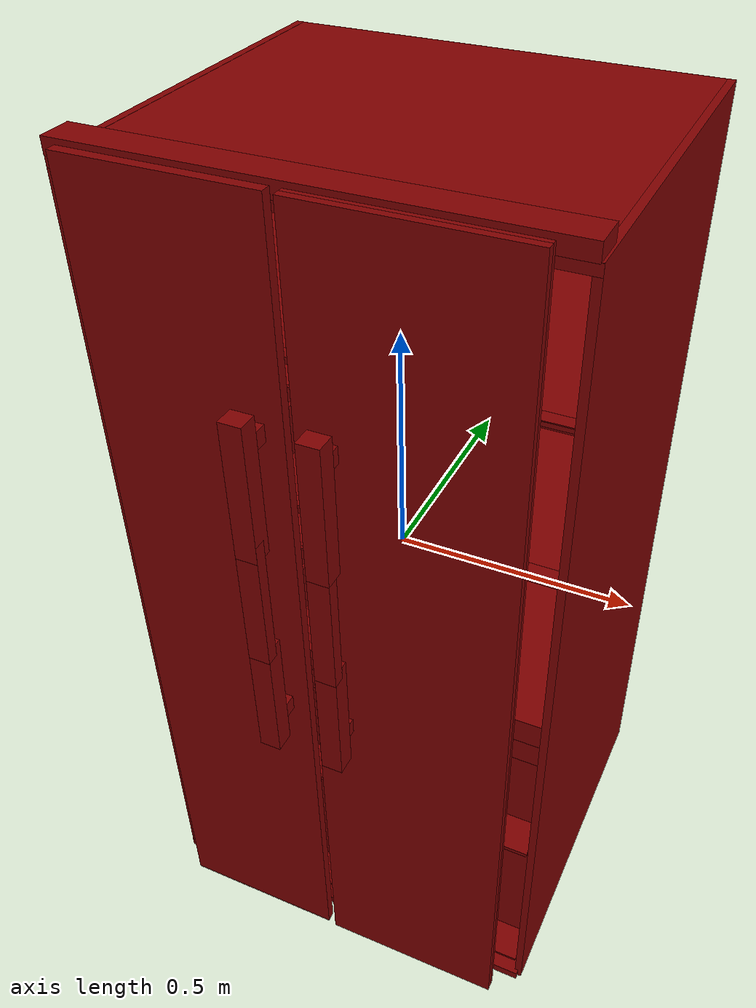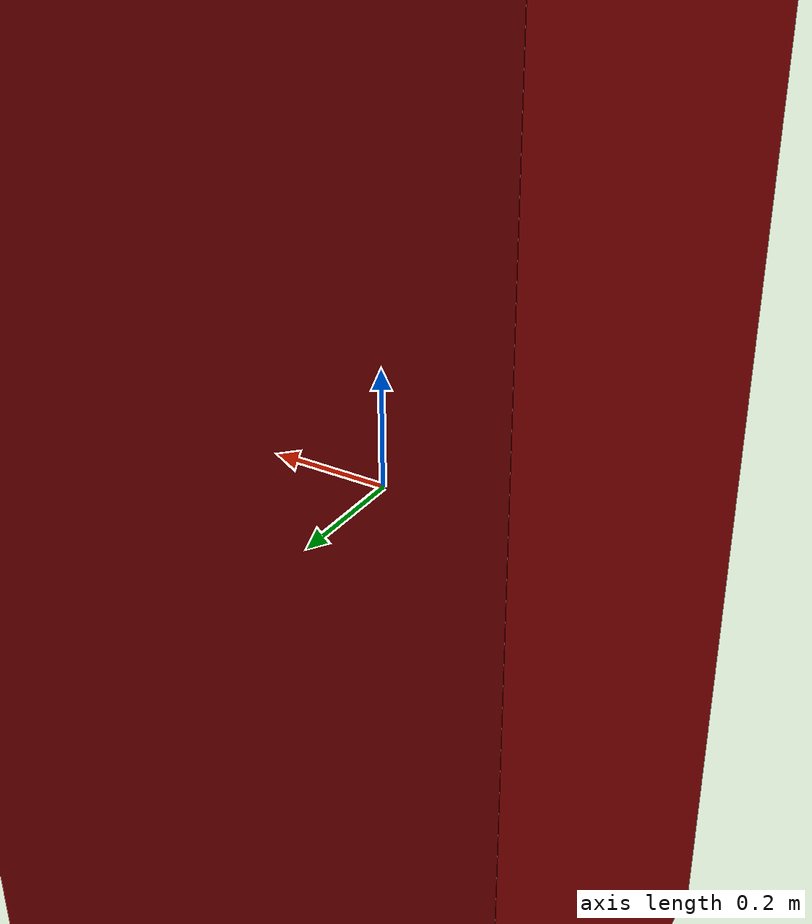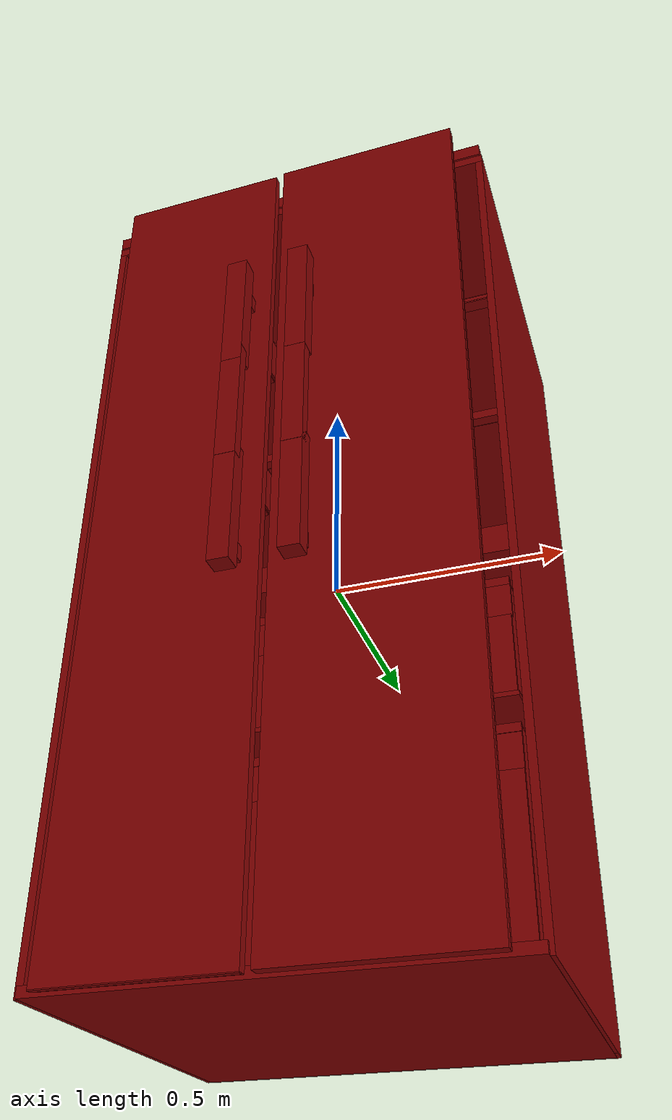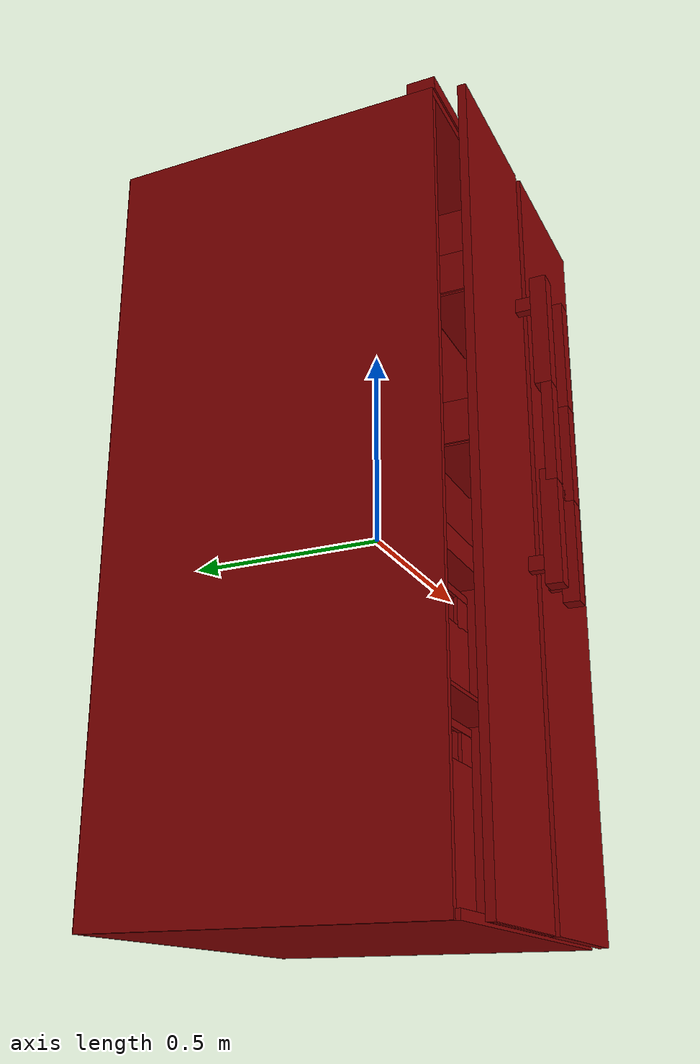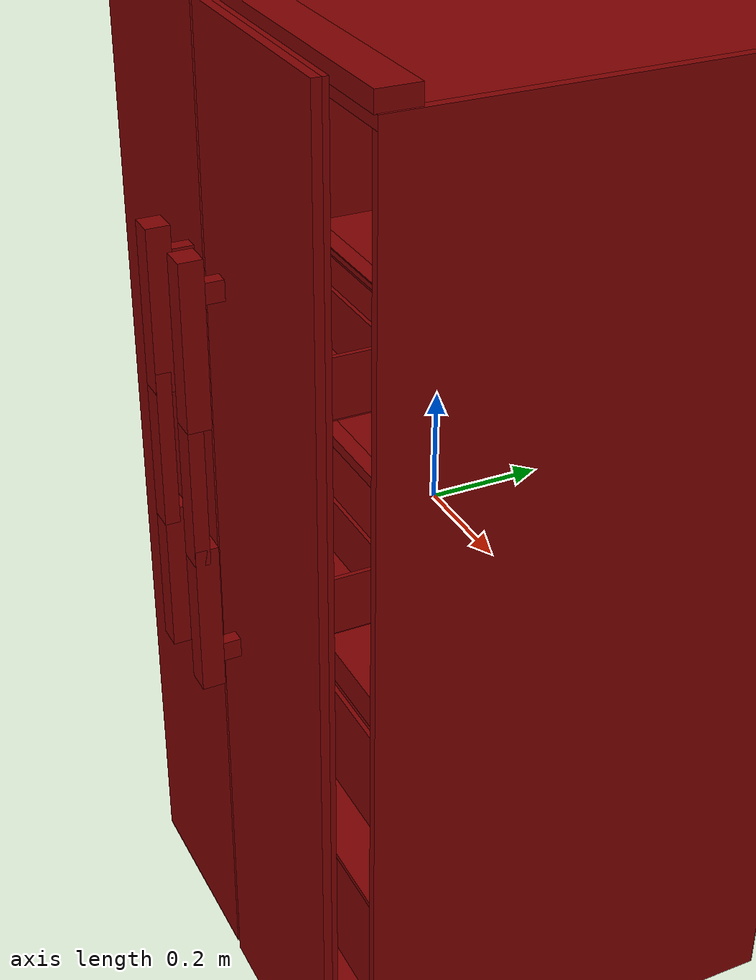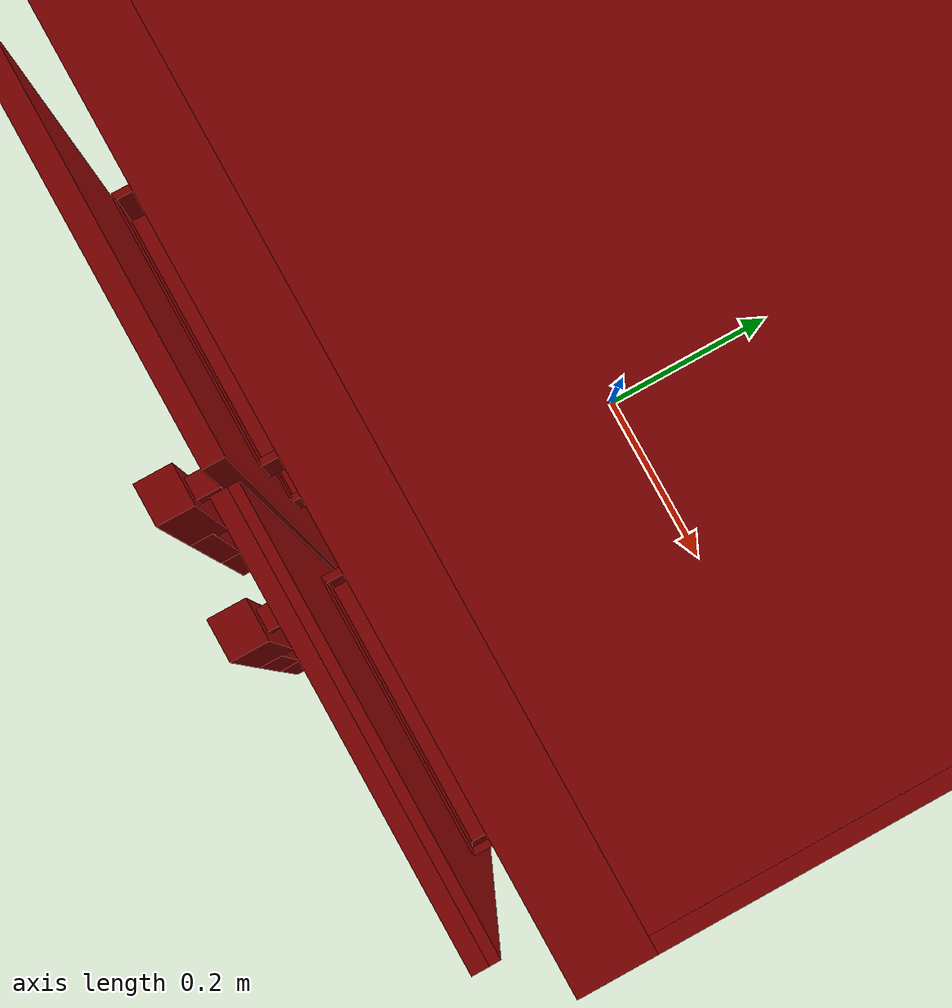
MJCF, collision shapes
<?xml version='1.0' encoding='UTF-8'?>
<mujoco model="model">
  <option timestep="0.002" gravity="0.0 0.0 -9.81"/>
  <compiler angle="radian"/>
  <asset>
    <mesh file="visuals/freezer_door.obj" name="freezer_door_vis"/>
    <mesh file="visuals/freezer_door_Clear.obj" name="freezer_door_Clear_vis"/>
    <mesh file="visuals/freezer_drawer0.obj" name="freezer_drawer0_vis"/>
    <mesh file="visuals/freezer_drawer1.obj" name="freezer_drawer1_vis"/>
    <mesh file="visuals/fridge_door.obj" name="fridge_door_vis"/>
    <mesh file="visuals/fridge_door_Clear.obj" name="fridge_door_Clear_vis"/>
    <mesh file="visuals/fridge_drawer0.obj" name="fridge_drawer0_vis"/>
    <mesh file="visuals/fridge_drawer1.obj" name="fridge_drawer1_vis"/>
    <mesh file="visuals/Body001.obj" name="Body001_vis"/>
    <mesh file="visuals/Body001_Clear.obj" name="Body001_Clear_vis"/>
    <mesh file="visuals/Body002.obj" name="Body002_vis"/>
    <texture file="visuals/T_BC001.png" name="Body001_material" type="2d"/>
    <material name="Body001_material" rgba="1 1 1 1.0" texture="Body001_material" shininess="0.2711968421936035" specular="0.5"/>
    <texture file="visuals/T_BC001.png" name="freezer_door_material" type="2d"/>
    <material name="freezer_door_material" rgba="1 1 1 1.0" texture="freezer_door_material" shininess="0.2711968421936035" specular="0.8"/>
    <texture file="visuals/T_BC001.png" name="freezer_door_Clear_material" type="2d"/>
    <material name="freezer_door_Clear_material" rgba="1 1 1 0.699999988079071" texture="freezer_door_Clear_material" shininess="0.5" specular="0.3103448502657381"/>
    <texture file="visuals/T_BC001.png" name="freezer_drawer0_material" type="2d"/>
    <material name="freezer_drawer0_material" rgba="1 1 1 1.0" texture="freezer_drawer0_material" shininess="0.2711968421936035" specular="0.5"/>
    <texture file="visuals/T_BC001.png" name="freezer_drawer1_material" type="2d"/>
    <material name="freezer_drawer1_material" rgba="1 1 1 1.0" texture="freezer_drawer1_material" shininess="0.2711968421936035" specular="0.5"/>
    <texture file="visuals/T_BC001.png" name="fridge_door_material" type="2d"/>
    <material name="fridge_door_material" rgba="1 1 1 1.0" texture="fridge_door_material" shininess="0.2711968421936035" specular="0.8"/>
    <texture file="visuals/T_BC001.png" name="fridge_door_Clear_material" type="2d"/>
    <material name="fridge_door_Clear_material" rgba="1 1 1 0.699999988079071" texture="fridge_door_Clear_material" shininess="0.5" specular="0.3103448502657381"/>
    <texture file="visuals/T_BC001.png" name="fridge_drawer0_material" type="2d"/>
    <material name="fridge_drawer0_material" rgba="1 1 1 0.699999988079071" texture="fridge_drawer0_material" shininess="0.5" specular="0.3103448502657381"/>
    <texture file="visuals/T_BC001.png" name="fridge_drawer1_material" type="2d"/>
    <material name="fridge_drawer1_material" rgba="1 1 1 0.699999988079071" texture="fridge_drawer1_material" shininess="0.5" specular="0.3103448502657381"/>
    <texture file="visuals/T_BC001.png" name="Body001_Clear_material" type="2d"/>
    <material name="Body001_Clear_material" rgba="1 1 1 0.699999988079071" texture="Body001_Clear_material" shininess="0.5" specular="0.3103448502657381"/>
    <texture file="visuals/T_BC001.png" name="Body002_material" type="2d"/>
    <material name="Body002_material" rgba="1 1 1 1.0" texture="Body002_material" shininess="0.2711968421936035" specular="0.5"/>
  </asset>
  <default>
    <default class="visual">
      <geom conaffinity="0" contype="0" group="1" type="mesh"/>
    </default>
    <default class="collision">
      <geom group="0" rgba="0.5 0 0 0.5"/>
    </default>
    <default class="spawn">
      <geom group="0" rgba="1 1 1 0.5" contype="0" conaffinity="0"/>
      <site group="0" rgba="1 1 1 0.5"/>
    </default>
    <default class="region">
      <geom group="1" conaffinity="0" contype="0" rgba="0 1 0 0"/>
    </default>
  </default>
  <worldbody>
    <body>
      <body name="object">
        <geom mesh="Body001_vis" type="mesh" solimp="0.998 0.998 0.001" solref="0.001 1" friction="0.95 0.3 0.1" class="visual" material="Body001_material"/>
        <geom class="collision" type="box" pos="0.44621882 0.06596079 -0.01984241" size="0.007767058443278074 0.4027557075023651 0.9029160737991333" quat="1.0 0.0 0.0 0.0"/>
        <geom class="collision" type="box" pos="-0.44518340 0.06625146 -0.01984260" size="0.007767022587358952 0.40304771065711975 0.902918815612793" quat="1.0 0.0 0.0 0.0"/>
        <geom class="collision" type="box" pos="0.00051770 0.06625141 0.87209511" size="0.45337268710136414 0.4030490219593048 0.010521224699914455" quat="1.0 0.0 0.0 0.0"/>
        <geom class="collision" type="box" pos="0.00051770 0.44306165 -0.02016941" size="0.45337384939193726 0.027360951527953148 0.902596116065979" quat="1.0 0.0 0.0 0.0"/>
        <geom class="collision" type="box" pos="-0.00001725 -0.30677203 0.89824516" size="0.4498790204524994 0.03391383960843086 0.015936633571982384" quat="1.0 0.0 0.0 0.0"/>
        <geom class="collision" type="box" pos="-0.23103455 0.10162059 0.54390491" size="0.20633357763290405 0.31218308210372925 0.004442761652171612" quat="1.0 0.0 0.0 0.0"/>
        <geom class="collision" type="box" pos="-0.23103461 0.10135735 0.20816555" size="0.206334188580513 0.3124469518661499 0.004442854784429073" quat="1.0 0.0 0.0 0.0"/>
        <geom class="collision" type="box" pos="0.00051768 0.06407682 -0.13568486" size="0.43784162402153015 0.34972813725471497 0.02915366180241108" quat="1.0 0.0 0.0 0.0"/>
        <geom class="collision" type="box" pos="-0.01787329 0.05275404 -0.02146750" size="0.006779637187719345 0.3610515594482422 0.8833908438682556" quat="1.0 0.0 0.0 0.0"/>
        <geom class="collision" type="box" pos="-0.00101628 0.04752206 -0.47721561" size="0.43238478899002075 0.36628425121307373 0.004442933946847916" quat="1.0 0.0 0.0 0.0"/>
        <geom class="collision" type="box" pos="-0.00101628 0.04837650 -0.90973359" size="0.4323861300945282 0.36543047428131104 0.01322093978524208" quat="1.0 0.0 0.0 0.0"/>
        <geom class="collision" type="box" pos="0.00104947 0.05714198 -0.91243505" size="0.4447697699069977 0.4043148458003998 0.010520728304982185" quat="1.0 0.0 0.0 0.0"/>
        <geom class="collision" type="box" pos="0.21367955 0.10135735 0.20816556" size="0.22476822137832642 0.3124905824661255 0.0044435434974730015" quat="1.0 0.0 0.0 0.0"/>
        <geom class="collision" type="box" pos="0.21367917 0.08884196 0.54390479" size="0.22476917505264282 0.32500654458999634 0.004443551879376173" quat="1.0 0.0 0.0 0.0"/>
        <geom class="collision" type="box" pos="-0.00077565 -0.22220803 0.54314131" size="0.44771742820739746 0.013787840493023396 0.007051393855363131" quat="1.0 0.0 0.0 0.0"/>
        <geom class="collision" type="box" pos="-0.00077563 -0.21961197 0.21440809" size="0.44771862030029297 0.013787882402539253 0.00937127135694027" quat="1.0 0.0 0.0 0.0"/>
        <body name="freezer_door">
          <joint axis="0.0 0.0 -1.0" pos="-0.43269765 -0.37996260 -0.00061982" limited="true" name="freezer_door_joint" range="0.0 1.5707963267948966" type="hinge" damping="1" frictionloss="1" armature=".01" stiffness="0.05"/>
          <geom mesh="freezer_door_vis" type="mesh" solimp="0.998 0.998 0.001" solref="0.001 1" friction="0.95 0.3 0.1" class="visual" material="freezer_door_material"/>
          <geom class="collision" type="box" pos="-0.20762806 -0.38984135 -0.00247922" size="0.18522216379642487 0.005338294431567192 0.9224058985710144" quat="1.0 0.0 0.0 0.0" name="freezer_door_main"/>
          <geom class="collision" type="box" pos="-0.20351033 -0.31346169 0.41063071" size="0.1404435932636261 0.0560014583170414 0.00282840128056705" quat="1.0 0.0 0.0 0.0"/>
          <geom class="collision" type="box" pos="-0.20351057 -0.36833149 0.09567123" size="0.14044491946697235 0.0011944229481741786 0.048301827162504196" quat="1.0 0.0 0.0 0.0"/>
          <geom class="collision" type="box" pos="-0.20351031 -0.25788251 0.09567117" size="0.1403992921113968 0.003357943380251527 0.04828261211514473" quat="1.0 0.0 0.0 0.0"/>
          <geom class="collision" type="box" pos="-0.20351057 -0.31346172 0.04587566" size="0.1404440551996231 0.05600184574723244 0.0028283975552767515" quat="1.0 0.0 0.0 0.0"/>
          <geom class="collision" type="box" pos="-0.34577599 -0.31307549 0.46042598" size="0.003705924842506647 0.05580850690603256 0.04828759282827377" quat="1.0 0.0 0.0 0.0"/>
          <geom class="collision" type="box" pos="-0.06324112 -0.31276459 0.46042598" size="0.003761481959372759 0.055808428674936295 0.04828760772943497" quat="1.0 0.0 0.0 0.0"/>
          <geom class="collision" type="box" pos="-0.20351033 -0.36833149 0.46042604" size="0.14044278860092163 0.001194413285702467 0.04830167815089226" quat="1.0 0.0 0.0 0.0"/>
          <geom class="collision" type="box" pos="-0.20351055 -0.25788251 0.46042598" size="0.14039553701877594 0.003357918467372656 0.0482826866209507" quat="1.0 0.0 0.0 0.0"/>
          <geom class="collision" type="box" pos="-0.06324112 -0.31276459 0.09567123" size="0.0037614996545016766 0.05580882355570793 0.04828827828168869" quat="1.0 0.0 0.0 0.0"/>
          <geom class="collision" type="box" pos="-0.34540424 -0.31307549 0.09567123" size="0.0033341876696795225 0.0558089017868042 0.04828813672065735" quat="1.0 0.0 0.0 0.0"/>
          <geom class="collision" type="box" pos="-0.07065108 -0.41492808 0.50640101" size="0.011834409087896347 0.025321457535028458 0.017358077690005302" quat="1.0 0.0 0.0 0.0" name="freezer_door_handle_1"/>
          <geom class="collision" type="box" pos="-0.07128543 -0.45421148 0.42671994" size="0.021905435249209404 0.019859325140714645 0.140484020113945" quat="1.0 0.0 0.0 0.0" name="freezer_door_handle_2"/>
          <geom class="collision" type="box" pos="-0.07128536 -0.45363397 -0.06516128" size="0.02190541848540306 0.019859397783875465 0.13595576584339142" quat="1.0 0.0 0.0 0.0" name="freezer_door_handle_3"/>
          <geom class="collision" type="box" pos="-0.07065097 -0.41491366 -0.14551889" size="0.011834399774670601 0.025335820391774178 0.01735810749232769" quat="1.0 0.0 0.0 0.0" name="freezer_door_handle_4"/>
          <geom class="collision" type="box" pos="-0.07128536 -0.46109644 0.18254045" size="0.021905606612563133 0.012859604321420193 0.13969214260578156" quat="1.0 0.0 0.0 0.0" name="freezer_door_handle_main"/>
          <geom class="collision" type="box" pos="-0.20762806 -0.38500908 -0.00134330" size="0.1852668821811676 0.010171208530664444 0.9214487671852112" quat="1.0 0.0 0.0 0.0"/>
          <body name="freezer_door_Clear">
            <geom mesh="freezer_door_Clear_vis" type="mesh" solimp="0.998 0.998 0.001" solref="0.001 1" friction="0.95 0.3 0.1" class="visual" material="freezer_door_Clear_material"/>
            <geom class="collision" type="box" pos="-0.20351033 -0.31346169 0.41063071" size="0.1404435932636261 0.0560014583170414 0.00282840128056705" quat="1.0 0.0 0.0 0.0"/>
            <geom class="collision" type="box" pos="-0.20351057 -0.36833149 0.09567123" size="0.14044491946697235 0.0011944229481741786 0.048301827162504196" quat="1.0 0.0 0.0 0.0"/>
            <geom class="collision" type="box" pos="-0.20351031 -0.25788251 0.09567117" size="0.1403992921113968 0.003357943380251527 0.04828261211514473" quat="1.0 0.0 0.0 0.0"/>
            <geom class="collision" type="box" pos="-0.20351057 -0.31346172 0.04587566" size="0.1404440551996231 0.05600184574723244 0.0028283975552767515" quat="1.0 0.0 0.0 0.0"/>
            <geom class="collision" type="box" pos="-0.34577599 -0.31307549 0.46042598" size="0.003705924842506647 0.05580850690603256 0.04828759282827377" quat="1.0 0.0 0.0 0.0"/>
            <geom class="collision" type="box" pos="-0.06324112 -0.31276459 0.46042598" size="0.003761481959372759 0.055808428674936295 0.04828760772943497" quat="1.0 0.0 0.0 0.0"/>
            <geom class="collision" type="box" pos="-0.20351033 -0.36833149 0.46042604" size="0.14044278860092163 0.001194413285702467 0.04830167815089226" quat="1.0 0.0 0.0 0.0"/>
            <geom class="collision" type="box" pos="-0.20351055 -0.25788251 0.46042598" size="0.14039553701877594 0.003357918467372656 0.0482826866209507" quat="1.0 0.0 0.0 0.0"/>
            <geom class="collision" type="box" pos="-0.06324112 -0.31276459 0.09567123" size="0.0037614996545016766 0.05580882355570793 0.04828827828168869" quat="1.0 0.0 0.0 0.0"/>
            <geom class="collision" type="box" pos="-0.34540424 -0.31307549 0.09567123" size="0.0033341876696795225 0.0558089017868042 0.04828813672065735" quat="1.0 0.0 0.0 0.0"/>
          </body>
        </body>
        <body name="freezer_drawer0">
          <geom class="region" name="reg_freezer_drawer0" type="box" pos="-0.22675699 0.08631127999999999 -0.687520465" size="0.15583861999999998 0.30335341 0.18469701500000002"/>
          <joint axis="0.0 -1.0 0.0" pos="-0.22689013 0.08366627 -0.69432806" limited="true" name="freezer_drawer0_joint" range="0.0 0.6" type="slide" damping="1" frictionloss="1" armature=".01" stiffness="0.05"/>
          <geom mesh="freezer_drawer0_vis" type="mesh" solimp="0.998 0.998 0.001" solref="0.001 1" friction="0.95 0.3 0.1" class="visual" material="freezer_drawer0_material"/>
          <geom class="collision" type="box" pos="-0.08512188 -0.23600462 -0.53870326" size="0.030655868351459503 0.004228693433105946 0.04130111634731293" quat="1.0 0.0 0.0 0.0"/>
          <geom class="collision" type="box" pos="-0.36605644 -0.23600459 -0.53870326" size="0.03326001390814781 0.0042287190444767475 0.04130129516124725" quat="1.0 0.0 0.0 0.0"/>
          <geom class="collision" type="box" pos="-0.22689107 -0.23600462 -0.73560684" size="0.17199008166790009 0.004228721838444471 0.15905064344406128" quat="1.0 0.0 0.0 0.0"/>
          <geom class="collision" type="box" pos="-0.22581503 -0.23677871 -0.50309210" size="0.17124305665493011 0.00500210328027606 0.008779858238995075" quat="1.0 0.0 0.0 0.0"/>
          <geom class="collision" type="box" pos="-0.39520264 0.08798204 -0.69336271" size="0.004421781748533249 0.31956592202186584 0.19901259243488312" quat="1.0 0.0 0.0 0.0"/>
          <geom class="collision" type="box" pos="-0.05858661 0.08729343 -0.69336265" size="0.004412725567817688 0.31945785880088806 0.1990128457546234" quat="1.0 0.0 0.0 0.0"/>
          <geom class="collision" type="box" pos="-0.22700426 0.08717792 -0.88918650" size="0.17213794589042664 0.3192666172981262 0.005509703420102596" quat="1.0 0.0 0.0 0.0"/>
          <geom class="collision" type="box" pos="-0.22527456 0.40324929 -0.69439935" size="0.1717817485332489 0.0046240282244980335 0.19797678291797638" quat="1.0 0.0 0.0 0.0"/>
        </body>
        <body name="freezer_drawer1">
          <geom class="region" name="reg_freezer_drawer1" type="box" pos="-0.237879125 0.08228477 -0.328666755" size="0.155313595 0.30427034999999997 0.128537385"/>
          <joint axis="0.0 -1.0 0.0" pos="-0.22791891 0.08366627 -0.33160725" limited="true" name="freezer_drawer1_joint" range="0.0 0.6" type="slide" damping="1" frictionloss="1" armature=".01" stiffness="0.05"/>
          <geom mesh="freezer_drawer1_vis" type="mesh" solimp="0.998 0.998 0.001" solref="0.001 1" friction="0.95 0.3 0.1" class="visual" material="freezer_drawer1_material"/>
          <geom class="collision" type="box" pos="-0.22784060 0.40192556 -0.33300986" size="0.1725112348794937 0.006034227553755045 0.13808131217956543" quat="1.0 0.0 0.0 0.0"/>
          <geom class="collision" type="box" pos="-0.22886309 0.07850865 -0.46761068" size="0.1713675558567047 0.3164621889591217 0.0035022865049540997" quat="1.0 0.0 0.0 0.0"/>
          <geom class="collision" type="box" pos="-0.05941728 0.08161505 -0.33026724" size="0.004610856529325247 0.3138255476951599 0.13741330802440643" quat="1.0 0.0 0.0 0.0"/>
          <geom class="collision" type="box" pos="-0.39634526 0.08141264 -0.33026724" size="0.004535562824457884 0.31362494826316833 0.13741397857666016" quat="1.0 0.0 0.0 0.0"/>
          <geom class="collision" type="box" pos="-0.22746241 -0.23606527 -0.20161288" size="0.17344792187213898 0.004289492964744568 0.008780058473348618" quat="1.0 0.0 0.0 0.0"/>
          <geom class="collision" type="box" pos="-0.22746241 -0.23600462 -0.37307521" size="0.17344792187213898 0.004228844307363033 0.09801774471998215" quat="1.0 0.0 0.0 0.0"/>
          <geom class="collision" type="box" pos="-0.36877957 -0.23600462 -0.23722413" size="0.032130833715200424 0.004228838253766298 0.0413036048412323" quat="1.0 0.0 0.0 0.0"/>
          <geom class="collision" type="box" pos="-0.08749916 -0.23600462 -0.23722413" size="0.032130833715200424 0.004228859208524227 0.041303783655166626" quat="1.0 0.0 0.0 0.0"/>
        </body>
        <body name="fridge_door">
          <joint axis="0.0 0.0 1.0" pos="0.43339086 -0.38305325 0.00048423" limited="true" name="fridge_door_joint" range="0.0 1.5707963267948966" type="hinge" damping="1" frictionloss="1" armature=".01" stiffness="0.05"/>
          <geom mesh="fridge_door_vis" type="mesh" solimp="0.998 0.998 0.001" solref="0.001 1" friction="0.95 0.3 0.1" class="visual" material="fridge_door_material"/>
          <geom class="collision" type="box" pos="0.19746725 -0.38715753 -0.00163477" size="0.19972559809684753 0.012316768988966942 0.921549916267395" quat="1.0 0.0 0.0 0.0"/>
          <geom class="collision" type="box" pos="0.05998394 -0.31307549 0.09567123" size="0.0033341876696795225 0.0558089017868042 0.048288773745298386" quat="1.0 0.0 0.0 0.0"/>
          <geom class="collision" type="box" pos="0.20139934 -0.25788251 0.46085936" size="0.13992030918598175 0.0033580497838556767 0.0482843741774559" quat="1.0 0.0 0.0 0.0"/>
          <geom class="collision" type="box" pos="0.20139957 -0.36833149 0.46085942" size="0.13996103405952454 0.001194413285702467 0.04829975962638855" quat="1.0 0.0 0.0 0.0"/>
          <geom class="collision" type="box" pos="0.34119049 -0.31276459 0.46085936" size="0.003761481959372759 0.055808428674936295 0.048288680613040924" quat="1.0 0.0 0.0 0.0"/>
          <geom class="collision" type="box" pos="0.05961219 -0.31307549 0.46085936" size="0.003705924842506647 0.05580850690603256 0.04828878119587898" quat="1.0 0.0 0.0 0.0"/>
          <geom class="collision" type="box" pos="0.20139933 -0.31346172 0.04587566" size="0.13996106386184692 0.05600184574723244 0.002828234573826194" quat="1.0 0.0 0.0 0.0"/>
          <geom class="collision" type="box" pos="0.20139958 -0.25788251 0.09567117" size="0.13992615044116974 0.003358164569362998 0.048285454511642456" quat="1.0 0.0 0.0 0.0"/>
          <geom class="collision" type="box" pos="0.20139933 -0.36833149 0.09567123" size="0.1399610936641693 0.0011944229481741786 0.048298753798007965" quat="1.0 0.0 0.0 0.0"/>
          <geom class="collision" type="box" pos="0.20139957 -0.31346169 0.41106397" size="0.13995833694934845 0.0560014583170414 0.00282818335108459" quat="1.0 0.0 0.0 0.0"/>
          <geom class="collision" type="box" pos="0.34119049 -0.31276459 0.09567123" size="0.0037614996545016766 0.05580882355570793 0.048289280384778976" quat="1.0 0.0 0.0 0.0"/>
          <geom class="collision" type="box" pos="0.06580608 -0.41492808 0.50640101" size="0.011834312230348587 0.025321267545223236 0.01735807955265045" quat="1.0 0.0 0.0 0.0" name="fridge_door_handle_1"/>
          <geom class="collision" type="box" pos="0.06644043 -0.45421148 0.42671994" size="0.021905288100242615 0.019859489053487778 0.14048537611961365" quat="1.0 0.0 0.0 0.0" name="fridge_door_handle_2"/>
          <geom class="collision" type="box" pos="0.06644036 -0.45363397 -0.06516128" size="0.02190527133643627 0.019859537482261658 0.13595712184906006" quat="1.0 0.0 0.0 0.0" name="fridge_door_handle_3"/>
          <geom class="collision" type="box" pos="0.06580597 -0.41491366 -0.14551889" size="0.011834271252155304 0.025335565209388733 0.01735811121761799" quat="1.0 0.0 0.0 0.0" name="fridge_door_handle_4"/>
          <geom class="collision" type="box" pos="0.06644036 -0.46109644 0.18254045" size="0.021905280649662018 0.012859556823968887 0.1396934986114502" quat="1.0 0.0 0.0 0.0" name="fridge_door_handle_main"/>
          <geom class="collision" type="box" pos="0.19746725 -0.39198980 -0.00150972" size="0.1997717320919037 0.007487480994313955 0.9216094613075256" quat="1.0 0.0 0.0 0.0" name="fridge_door_main"/>
          <body name="fridge_door_Clear">
            <geom mesh="fridge_door_Clear_vis" type="mesh" solimp="0.998 0.998 0.001" solref="0.001 1" friction="0.95 0.3 0.1" class="visual" material="fridge_door_Clear_material"/>
            <geom class="collision" type="box" pos="0.05998394 -0.31307549 0.09567123" size="0.0033341876696795225 0.0558089017868042 0.048288773745298386" quat="1.0 0.0 0.0 0.0"/>
            <geom class="collision" type="box" pos="0.20139934 -0.25788251 0.46085936" size="0.13992030918598175 0.0033580497838556767 0.0482843741774559" quat="1.0 0.0 0.0 0.0"/>
            <geom class="collision" type="box" pos="0.20139957 -0.36833149 0.46085942" size="0.13996103405952454 0.001194413285702467 0.04829975962638855" quat="1.0 0.0 0.0 0.0"/>
            <geom class="collision" type="box" pos="0.34119049 -0.31276459 0.46085936" size="0.003761481959372759 0.055808428674936295 0.048288680613040924" quat="1.0 0.0 0.0 0.0"/>
            <geom class="collision" type="box" pos="0.05961219 -0.31307549 0.46085936" size="0.003705924842506647 0.05580850690603256 0.04828878119587898" quat="1.0 0.0 0.0 0.0"/>
            <geom class="collision" type="box" pos="0.20139933 -0.31346172 0.04587566" size="0.13996106386184692 0.05600184574723244 0.002828234573826194" quat="1.0 0.0 0.0 0.0"/>
            <geom class="collision" type="box" pos="0.20139958 -0.25788251 0.09567117" size="0.13992615044116974 0.003358164569362998 0.048285454511642456" quat="1.0 0.0 0.0 0.0"/>
            <geom class="collision" type="box" pos="0.20139933 -0.36833149 0.09567123" size="0.1399610936641693 0.0011944229481741786 0.048298753798007965" quat="1.0 0.0 0.0 0.0"/>
            <geom class="collision" type="box" pos="0.20139957 -0.31346169 0.41106397" size="0.13995833694934845 0.0560014583170414 0.00282818335108459" quat="1.0 0.0 0.0 0.0"/>
            <geom class="collision" type="box" pos="0.34119049 -0.31276459 0.09567123" size="0.0037614996545016766 0.05580882355570793 0.048289280384778976" quat="1.0 0.0 0.0 0.0"/>
          </body>
        </body>
        <body name="fridge_drawer0">
          <geom class="region" name="reg_fridge_drawer0" type="box" pos="0.21421279499999998 0.08631127 -0.687520465" size="0.190401605 0.30335342 0.18469701500000002"/>
          <joint axis="0.0 -1.0 0.0" pos="0.21139765 0.08366627 -0.69432806" limited="true" name="fridge_drawer0_joint" range="0.0 0.6" type="slide" damping="1" frictionloss="1" armature=".01" stiffness="0.05"/>
          <geom mesh="fridge_drawer0_vis" type="mesh" solimp="0.998 0.998 0.001" solref="0.001 1" friction="0.95 0.3 0.1" class="visual" material="fridge_drawer0_material"/>
          <geom class="collision" type="box" pos="0.38715476 -0.23600462 -0.53870326" size="0.030655866488814354 0.004228898789733648 0.04130443558096886" quat="1.0 0.0 0.0 0.0"/>
          <geom class="collision" type="box" pos="0.04035036 -0.23600459 -0.53870326" size="0.03326001390814781 0.004228928592056036 0.041304610669612885" quat="1.0 0.0 0.0 0.0"/>
          <geom class="collision" type="box" pos="0.21238908 -0.23600462 -0.73560684" size="0.20486339926719666 0.00422893138602376 0.15906105935573578" quat="1.0 0.0 0.0 0.0"/>
          <geom class="collision" type="box" pos="0.21378899 -0.23677871 -0.50309210" size="0.20444023609161377 0.005002518184483051 0.008780275471508503" quat="1.0 0.0 0.0 0.0"/>
          <geom class="collision" type="box" pos="0.01120416 0.08798204 -0.69336271" size="0.004421780351549387 0.31958675384521484 0.19902300834655762" quat="1.0 0.0 0.0 0.0"/>
          <geom class="collision" type="box" pos="0.41272354 0.08729343 -0.69336265" size="0.004412724170833826 0.31947869062423706 0.1990232616662979" quat="1.0 0.0 0.0 0.0"/>
          <geom class="collision" type="box" pos="0.21396552 0.08717792 -0.88918650" size="0.2067008912563324 0.3192874491214752 0.0055101183243095875" quat="1.0 0.0 0.0 0.0"/>
          <geom class="collision" type="box" pos="0.21569520 0.40324929 -0.69439935" size="0.20634469389915466 0.004624233115464449 0.19798721373081207" quat="1.0 0.0 0.0 0.0"/>
        </body>
        <body name="fridge_drawer1">
          <geom class="region" name="reg_fridge_drawer1" type="box" pos="0.21398832499999998 0.08228477 -0.328666755" size="0.189876545 0.30427034999999997 0.128537385"/>
          <joint axis="0.0 -1.0 0.0" pos="0.21061552 0.08366627 -0.33160725" limited="true" name="fridge_drawer1_joint" range="0.0 0.6" type="slide" damping="1" frictionloss="1" armature=".01" stiffness="0.05"/>
          <geom mesh="fridge_drawer1_vis" type="mesh" solimp="0.998 0.998 0.001" solref="0.001 1" friction="0.95 0.3 0.1" class="visual" material="fridge_drawer1_material"/>
          <geom class="collision" type="box" pos="0.21312916 0.40192556 -0.33300986" size="0.20707416534423828 0.006034641992300749 0.1380879431962967" quat="1.0 0.0 0.0 0.0"/>
          <geom class="collision" type="box" pos="0.21210668 0.07850865 -0.46761068" size="0.20593050122261047 0.3164830207824707 0.0035024939570575953" quat="1.0 0.0 0.0 0.0"/>
          <geom class="collision" type="box" pos="0.41102132 0.08161505 -0.33026724" size="0.004610855598002672 0.3138464093208313 0.1374199390411377" quat="1.0 0.0 0.0 0.0"/>
          <geom class="collision" type="box" pos="0.01006154 0.08141264 -0.33026724" size="0.004535564221441746 0.3136458098888397 0.13742060959339142" quat="1.0 0.0 0.0 0.0"/>
          <geom class="collision" type="box" pos="0.21194685 -0.23606527 -0.20161288" size="0.20645035803318024 0.004289697855710983 0.008780472911894321" quat="1.0 0.0 0.0 0.0"/>
          <geom class="collision" type="box" pos="0.21112855 -0.23600462 -0.37307521" size="0.2056320607662201 0.004229053854942322 0.09802437573671341" quat="1.0 0.0 0.0 0.0"/>
          <geom class="collision" type="box" pos="0.03762726 -0.23600462 -0.23722413" size="0.032130833715200424 0.004229043144732714 0.04130692034959793" quat="1.0 0.0 0.0 0.0"/>
          <geom class="collision" type="box" pos="0.38692501 -0.23600462 -0.23722413" size="0.032130833715200424 0.0042290640994906425 0.04130709916353226" quat="1.0 0.0 0.0 0.0"/>
        </body>
        <body name="Body001_Clear">
          <geom mesh="Body001_Clear_vis" type="mesh" solimp="0.998 0.998 0.001" solref="0.001 1" friction="0.95 0.3 0.1" class="visual" material="Body001_Clear_material"/>
          <geom class="collision" type="box" pos="0.21367955 0.10135735 0.20816556" size="0.22476822137832642 0.3124905824661255 0.0044435434974730015" quat="1.0 0.0 0.0 0.0"/>
          <geom class="collision" type="box" pos="0.21367917 0.08884196 0.54390479" size="0.22476917505264282 0.32500654458999634 0.004443551879376173" quat="1.0 0.0 0.0 0.0"/>
        </body>
        <body name="Body002">
          <geom mesh="Body002_vis" type="mesh" solimp="0.998 0.998 0.001" solref="0.001 1" friction="0.95 0.3 0.1" class="visual" material="Body002_material"/>
        </body>
        <geom class="region" name="reg_freezer_shelf0" type="box" pos="-0.23074825 0.0816364 0.047513360000000004" size="0.20109355 0.32555635 0.14914447"/>
        <geom class="region" name="reg_freezer_shelf1" type="box" pos="-0.230811735 0.10286374999999999 0.37608070000000005" size="0.20050268499999999 0.304329 0.15820570000000003"/>
        <geom class="region" name="reg_freezer_shelf2" type="box" pos="-0.230811735 0.10286374999999999 0.70499516" size="0.20050268499999999 0.304329 0.15190454000000003"/>
        <geom class="region" name="reg_fridge_shelf0" type="box" pos="0.21389562 0.0816364 0.047513360000000004" size="0.22017701 0.32555635 0.14914447"/>
        <geom class="region" name="reg_fridge_shelf1" type="box" pos="0.21383214 0.10286374999999999 0.37608070000000005" size="0.21958614999999998 0.304329 0.15820570000000003"/>
        <geom class="region" name="reg_fridge_shelf2" type="box" pos="0.21383214 0.10286374999999999 0.70499516" size="0.21958614999999998 0.304329 0.15190454000000003"/>
        <geom class="region" name="reg_main" type="box" pos="7.14999999984478e-07 0.03547586500000002 -3.2449999999850654e-06" size="0.455972745 0.43595327500000003 0.9262858150000001"/>
      </body>
    </body>
  </worldbody>
  <actuator>
    <motor name="freezer_door_joint_actuator" joint="freezer_door_joint" gear="50"/>
    <motor name="freezer_drawer0_joint_actuator" joint="freezer_drawer0_joint" gear="50"/>
    <motor name="freezer_drawer1_joint_actuator" joint="freezer_drawer1_joint" gear="50"/>
    <motor name="fridge_door_joint_actuator" joint="fridge_door_joint" gear="50"/>
    <motor name="fridge_drawer0_joint_actuator" joint="fridge_drawer0_joint" gear="50"/>
    <motor name="fridge_drawer1_joint_actuator" joint="fridge_drawer1_joint" gear="50"/>
  </actuator>
</mujoco>
